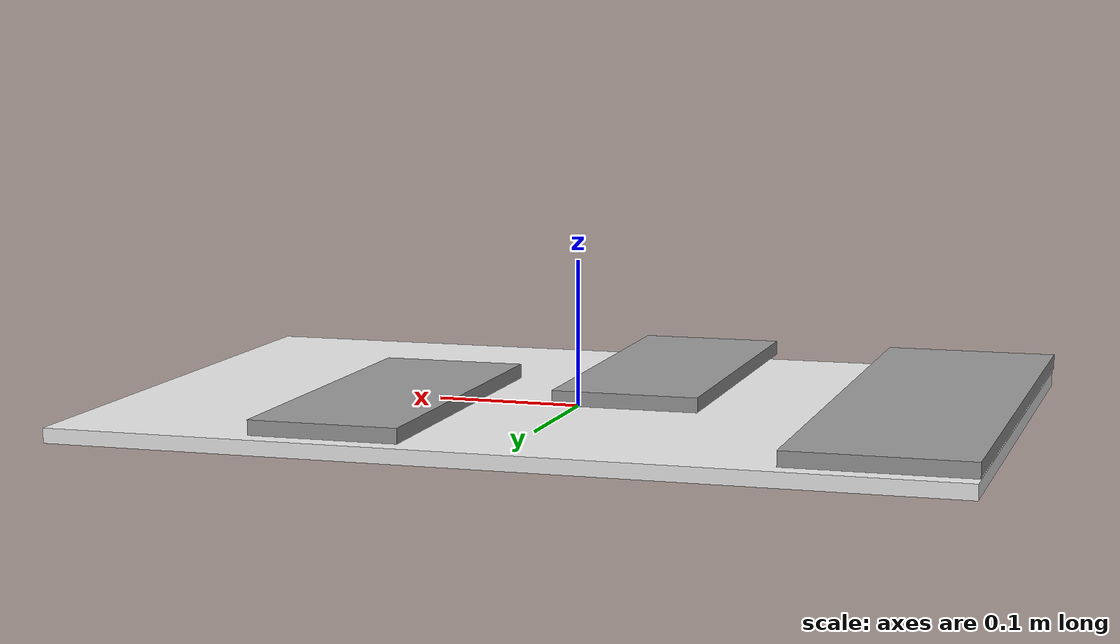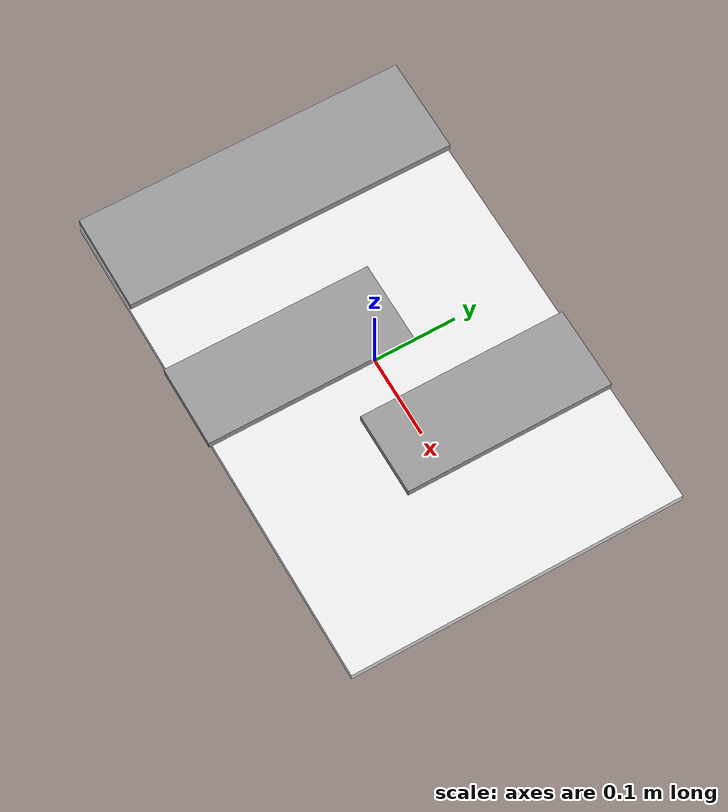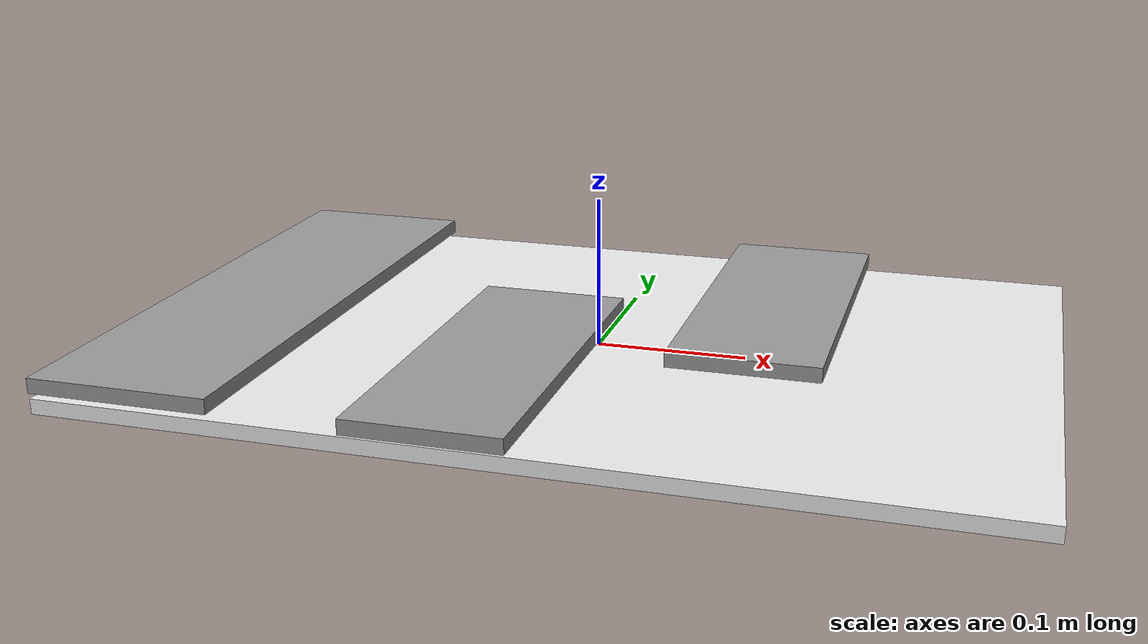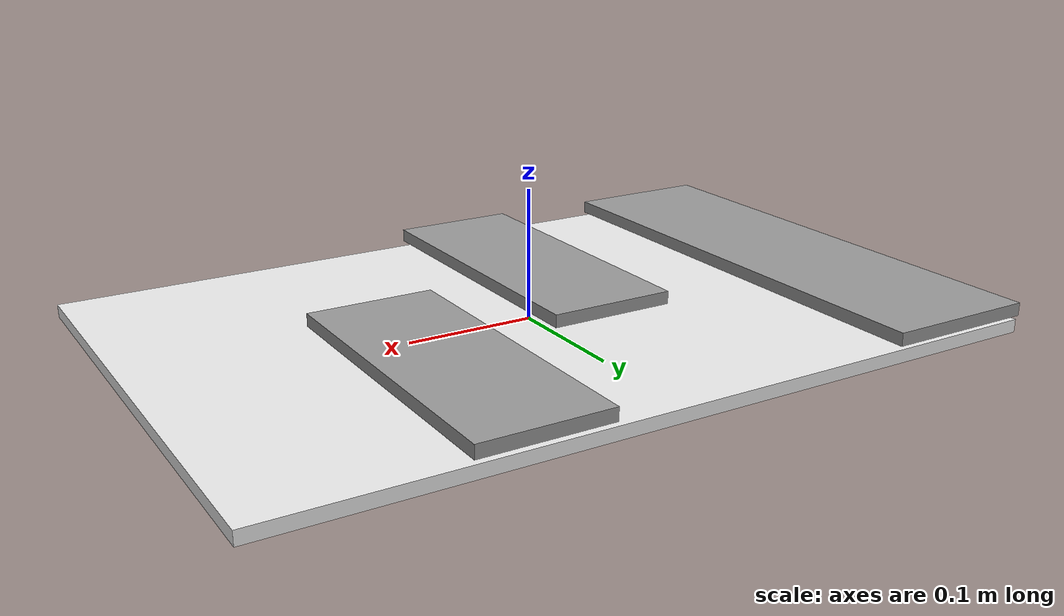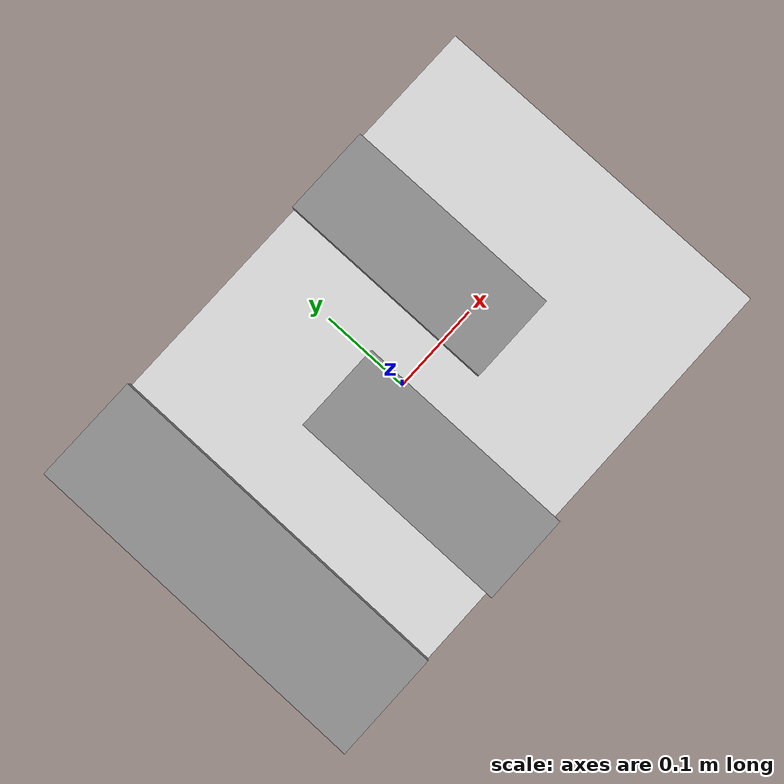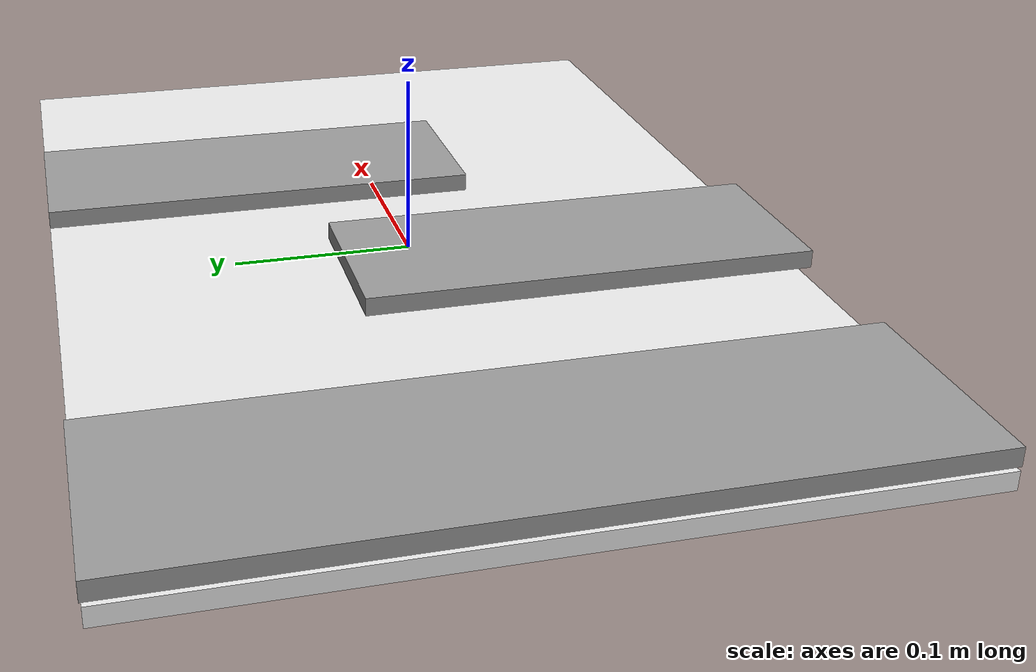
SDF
<?xml version='1.0'?>
<sdf version='1.6'>
  <model name='lfd_canvas'>
    <link name='link'>
      <inertial>
        <mass>1</mass>
        <inertia>
          <ixx>0.166667</ixx>
          <ixy>0</ixy>
          <ixz>0</ixz>
          <iyy>0.166667</iyy>
          <iyz>0</iyz>
          <izz>0.166667</izz>
        </inertia>
        <pose frame=''>0 0 0 0 -0 0</pose>
      </inertial>
      <self_collide>0</self_collide>
      <enable_wind>0</enable_wind>
      <kinematic>0</kinematic>
      <pose frame=''>0 0 0 0 -0 0</pose>
      <gravity>1</gravity>
      <visual name='visual'>
        <geometry>
          <box>
            <size>0.6 0.4 0.01</size>
          </box>
        </geometry>
        <material>
          <script>
            <name>Gazebo/White</name>
            <uri>file://media/materials/scripts/gazebo.material</uri>
          </script>
          <shader type='vertex'>
            <normal_map>__default__</normal_map>
          </shader>
          <ambient>1 1 1 1</ambient>
          <diffuse>1 1 1 1</diffuse>
          <specular>0 0 0 1</specular>
          <emissive>0 0 0 1</emissive>
        </material>
        <pose frame=''>0 0 0 0 -0 0</pose>
        <transparency>0</transparency>
        <cast_shadows>1</cast_shadows>
      </visual>
      <collision name='collision'>
        <laser_retro>0</laser_retro>
        <max_contacts>10</max_contacts>
        <pose frame=''>0 0 0 0 -0 0</pose>
        <geometry>
          <box>
            <size>0.6 0.4 0.01</size>
          </box>
        </geometry>
        <surface>
          <friction>
            <ode>
              <mu>1</mu>
              <mu2>1</mu2>
              <fdir1>0 0 0</fdir1>
              <slip1>0</slip1>
              <slip2>0</slip2>
            </ode>
            <torsional>
              <coefficient>1</coefficient>
              <patch_radius>0</patch_radius>
              <surface_radius>0</surface_radius>
              <use_patch_radius>1</use_patch_radius>
              <ode>
                <slip>0</slip>
              </ode>
            </torsional>
          </friction>
          <bounce>
            <restitution_coefficient>0</restitution_coefficient>
            <threshold>1e+06</threshold>
          </bounce>
          <contact>
            <collide_without_contact>0</collide_without_contact>
            <collide_without_contact_bitmask>1</collide_without_contact_bitmask>
            <collide_bitmask>1</collide_bitmask>
            <ode>
              <soft_cfm>0</soft_cfm>
              <soft_erp>0.2</soft_erp>
              <kp>1e+13</kp>
              <kd>1</kd>
              <max_vel>0.01</max_vel>
              <min_depth>0</min_depth>
            </ode>
            <bullet>
              <split_impulse>1</split_impulse>
              <split_impulse_penetration_threshold>-0.01</split_impulse_penetration_threshold>
              <soft_cfm>0</soft_cfm>
              <soft_erp>0.2</soft_erp>
              <kp>1e+13</kp>
              <kd>1</kd>
            </bullet>
          </contact>
        </surface>
      </collision>
    </link>
    <link name='link_0'>
      <inertial>
        <mass>1</mass>
        <inertia>
          <ixx>0.166667</ixx>
          <ixy>0</ixy>
          <ixz>0</ixz>
          <iyy>0.166667</iyy>
          <iyz>0</iyz>
          <izz>0.166667</izz>
        </inertia>
        <pose frame=''>0 0 0 0 -0 0</pose>
      </inertial>
      <pose frame=''>-0.241299 0.000809 0.013047 0 -0 0</pose>
      <gravity>1</gravity>
      <self_collide>0</self_collide>
      <kinematic>0</kinematic>
      <enable_wind>0</enable_wind>
      <visual name='visual'>
        <pose frame=''>0 0 0 0 -0 0</pose>
        <geometry>
          <box>
            <size>0.12 0.4 0.01</size>
          </box>
        </geometry>
        <material>
          <lighting>1</lighting>
          <script>
            <uri>file://media/materials/scripts/gazebo.material</uri>
            <name>Gazebo/Grey</name>
          </script>
          <shader type='vertex'>
            <normal_map>__default__</normal_map>
          </shader>
          <ambient>0.3 0.3 0.3 1</ambient>
          <diffuse>0.7 0.7 0.7 1</diffuse>
          <specular>0.01 0.01 0.01 1</specular>
          <emissive>0 0 0 1</emissive>
        </material>
        <transparency>0</transparency>
        <cast_shadows>1</cast_shadows>
      </visual>
      <collision name='collision'>
        <laser_retro>0</laser_retro>
        <max_contacts>10</max_contacts>
        <pose frame=''>0 0 0 0 -0 0</pose>
        <geometry>
          <box>
            <size>0.12 0.4 0.01</size>
          </box>
        </geometry>
        <surface>
          <friction>
            <ode>
              <mu>1</mu>
              <mu2>1</mu2>
              <fdir1>0 0 0</fdir1>
              <slip1>0</slip1>
              <slip2>0</slip2>
            </ode>
            <torsional>
              <coefficient>1</coefficient>
              <patch_radius>0</patch_radius>
              <surface_radius>0</surface_radius>
              <use_patch_radius>1</use_patch_radius>
              <ode>
                <slip>0</slip>
              </ode>
            </torsional>
          </friction>
          <bounce>
            <restitution_coefficient>0</restitution_coefficient>
            <threshold>1e+06</threshold>
          </bounce>
          <contact>
            <collide_without_contact>0</collide_without_contact>
            <collide_without_contact_bitmask>1</collide_without_contact_bitmask>
            <collide_bitmask>1</collide_bitmask>
            <ode>
              <soft_cfm>0</soft_cfm>
              <soft_erp>0.2</soft_erp>
              <kp>1e+13</kp>
              <kd>1</kd>
              <max_vel>0.01</max_vel>
              <min_depth>0</min_depth>
            </ode>
            <bullet>
              <split_impulse>1</split_impulse>
              <split_impulse_penetration_threshold>-0.01</split_impulse_penetration_threshold>
              <soft_cfm>0</soft_cfm>
              <soft_erp>0.2</soft_erp>
              <kp>1e+13</kp>
              <kd>1</kd>
            </bullet>
          </contact>
        </surface>
      </collision>
    </link>
    <link name='link_0_clone'>
      <inertial>
        <mass>1</mass>
        <inertia>
          <ixx>0.166667</ixx>
          <ixy>0</ixy>
          <ixz>0</ixz>
          <iyy>0.166667</iyy>
          <iyz>0</iyz>
          <izz>0.166667</izz>
        </inertia>
        <pose frame=''>0 0 0 0 -0 0</pose>
      </inertial>
      <pose frame=''>-0.045094 -0.079298 0.013047 0 -0 0</pose>
      <gravity>1</gravity>
      <self_collide>0</self_collide>
      <kinematic>0</kinematic>
      <enable_wind>0</enable_wind>
      <visual name='visual'>
        <pose frame=''>0 0 0 0 -0 0</pose>
        <geometry>
          <box>
            <size>0.1 0.25 0.01</size>
          </box>
        </geometry>
        <material>
          <lighting>1</lighting>
          <script>
            <uri>file://media/materials/scripts/gazebo.material</uri>
            <name>Gazebo/Grey</name>
          </script>
          <shader type='vertex'>
            <normal_map>__default__</normal_map>
          </shader>
          <ambient>0.3 0.3 0.3 1</ambient>
          <diffuse>0.7 0.7 0.7 1</diffuse>
          <specular>0.01 0.01 0.01 1</specular>
          <emissive>0 0 0 1</emissive>
        </material>
        <transparency>0</transparency>
        <cast_shadows>1</cast_shadows>
      </visual>
      <collision name='collision'>
        <laser_retro>0</laser_retro>
        <max_contacts>10</max_contacts>
        <pose frame=''>0 0 0 0 -0 0</pose>
        <geometry>
          <box>
            <size>0.1 0.25 0.01</size>
          </box>
        </geometry>
        <surface>
          <friction>
            <ode>
              <mu>1</mu>
              <mu2>1</mu2>
              <fdir1>0 0 0</fdir1>
              <slip1>0</slip1>
              <slip2>0</slip2>
            </ode>
            <torsional>
              <coefficient>1</coefficient>
              <patch_radius>0</patch_radius>
              <surface_radius>0</surface_radius>
              <use_patch_radius>1</use_patch_radius>
              <ode>
                <slip>0</slip>
              </ode>
            </torsional>
          </friction>
          <bounce>
            <restitution_coefficient>0</restitution_coefficient>
            <threshold>1e+06</threshold>
          </bounce>
          <contact>
            <collide_without_contact>0</collide_without_contact>
            <collide_without_contact_bitmask>1</collide_without_contact_bitmask>
            <collide_bitmask>1</collide_bitmask>
            <ode>
              <soft_cfm>0</soft_cfm>
              <soft_erp>0.2</soft_erp>
              <kp>1e+13</kp>
              <kd>1</kd>
              <max_vel>0.01</max_vel>
              <min_depth>0</min_depth>
            </ode>
            <bullet>
              <split_impulse>1</split_impulse>
              <split_impulse_penetration_threshold>-0.01</split_impulse_penetration_threshold>
              <soft_cfm>0</soft_cfm>
              <soft_erp>0.2</soft_erp>
              <kp>1e+13</kp>
              <kd>1</kd>
            </bullet>
          </contact>
        </surface>
      </collision>
    </link>
    <link name='link_0_clone_clone'>
      <inertial>
        <mass>1</mass>
        <inertia>
          <ixx>0.166667</ixx>
          <ixy>0</ixy>
          <ixz>0</ixz>
          <iyy>0.166667</iyy>
          <iyz>0</iyz>
          <izz>0.166667</izz>
        </inertia>
        <pose frame=''>0 0 0 0 -0 0</pose>
      </inertial>
      <pose frame=''>0.10718 0.074965 0.013047 0 -0 0</pose>
      <gravity>1</gravity>
      <self_collide>0</self_collide>
      <kinematic>0</kinematic>
      <enable_wind>0</enable_wind>
      <visual name='visual'>
        <pose frame=''>0 0 0 0 -0 0</pose>
        <geometry>
          <box>
            <size>0.1 0.25 0.01</size>
          </box>
        </geometry>
        <material>
          <lighting>1</lighting>
          <script>
            <uri>file://media/materials/scripts/gazebo.material</uri>
            <name>Gazebo/Grey</name>
          </script>
          <shader type='vertex'>
            <normal_map>__default__</normal_map>
          </shader>
          <ambient>0.3 0.3 0.3 1</ambient>
          <diffuse>0.7 0.7 0.7 1</diffuse>
          <specular>0.01 0.01 0.01 1</specular>
          <emissive>0 0 0 1</emissive>
        </material>
        <transparency>0</transparency>
        <cast_shadows>1</cast_shadows>
      </visual>
      <collision name='collision'>
        <laser_retro>0</laser_retro>
        <max_contacts>10</max_contacts>
        <pose frame=''>0 0 0 0 -0 0</pose>
        <geometry>
          <box>
            <size>0.1 0.25 0.01</size>
          </box>
        </geometry>
        <surface>
          <friction>
            <ode>
              <mu>1</mu>
              <mu2>1</mu2>
              <fdir1>0 0 0</fdir1>
              <slip1>0</slip1>
              <slip2>0</slip2>
            </ode>
            <torsional>
              <coefficient>1</coefficient>
              <patch_radius>0</patch_radius>
              <surface_radius>0</surface_radius>
              <use_patch_radius>1</use_patch_radius>
              <ode>
                <slip>0</slip>
              </ode>
            </torsional>
          </friction>
          <bounce>
            <restitution_coefficient>0</restitution_coefficient>
            <threshold>1e+06</threshold>
          </bounce>
          <contact>
            <collide_without_contact>0</collide_without_contact>
            <collide_without_contact_bitmask>1</collide_without_contact_bitmask>
            <collide_bitmask>1</collide_bitmask>
            <ode>
              <soft_cfm>0</soft_cfm>
              <soft_erp>0.2</soft_erp>
              <kp>1e+13</kp>
              <kd>1</kd>
              <max_vel>0.01</max_vel>
              <min_depth>0</min_depth>
            </ode>
            <bullet>
              <split_impulse>1</split_impulse>
              <split_impulse_penetration_threshold>-0.01</split_impulse_penetration_threshold>
              <soft_cfm>0</soft_cfm>
              <soft_erp>0.2</soft_erp>
              <kp>1e+13</kp>
              <kd>1</kd>
            </bullet>
          </contact>
        </surface>
      </collision>
    </link>
    <link name='link_1'>
      <inertial>
        <mass>1</mass>
        <inertia>
          <ixx>0.145833</ixx>
          <ixy>0</ixy>
          <ixz>0</ixz>
          <iyy>0.145833</iyy>
          <iyz>0</iyz>
          <izz>0.125</izz>
        </inertia>
        <pose frame=''>0 0 0 0 -0 0</pose>
      </inertial>
      <pose frame=''>0.204195 0.073589 -0.004822 0 -0 0</pose>
      <gravity>1</gravity>
      <self_collide>0</self_collide>
      <kinematic>0</kinematic>
      <enable_wind>0</enable_wind>
      <visual name='visual'>
        <pose frame=''>0 0 0 0 -0 0</pose>
        <geometry>
          <cylinder>
            <radius>0.005</radius>
            <length>0.01</length>
          </cylinder>
        </geometry>
        <material>
          <lighting>1</lighting>
          <script>
            <uri>file://media/materials/scripts/gazebo.material</uri>
            <name>Gazebo/Green</name>
          </script>
          <shader type='vertex'>
            <normal_map>__default__</normal_map>
          </shader>
          <ambient>0.3 0.3 0.3 1</ambient>
          <diffuse>0.7 0.7 0.7 1</diffuse>
          <specular>0.01 0.01 0.01 1</specular>
          <emissive>0 0 0 1</emissive>
        </material>
        <transparency>0</transparency>
        <cast_shadows>1</cast_shadows>
      </visual>
      <collision name='collision'>
        <laser_retro>0</laser_retro>
        <max_contacts>10</max_contacts>
        <pose frame=''>0 0 0 0 -0 0</pose>
        <geometry>
          <cylinder>
            <radius>0.005</radius>
            <length>0.01</length>
          </cylinder>
        </geometry>
        <surface>
          <friction>
            <ode>
              <mu>1</mu>
              <mu2>1</mu2>
              <fdir1>0 0 0</fdir1>
              <slip1>0</slip1>
              <slip2>0</slip2>
            </ode>
            <torsional>
              <coefficient>1</coefficient>
              <patch_radius>0</patch_radius>
              <surface_radius>0</surface_radius>
              <use_patch_radius>1</use_patch_radius>
              <ode>
                <slip>0</slip>
              </ode>
            </torsional>
          </friction>
          <bounce>
            <restitution_coefficient>0</restitution_coefficient>
            <threshold>1e+06</threshold>
          </bounce>
          <contact>
            <collide_without_contact>0</collide_without_contact>
            <collide_without_contact_bitmask>1</collide_without_contact_bitmask>
            <collide_bitmask>1</collide_bitmask>
            <ode>
              <soft_cfm>0</soft_cfm>
              <soft_erp>0.2</soft_erp>
              <kp>1e+13</kp>
              <kd>1</kd>
              <max_vel>0.01</max_vel>
              <min_depth>0</min_depth>
            </ode>
            <bullet>
              <split_impulse>1</split_impulse>
              <split_impulse_penetration_threshold>-0.01</split_impulse_penetration_threshold>
              <soft_cfm>0</soft_cfm>
              <soft_erp>0.2</soft_erp>
              <kp>1e+13</kp>
              <kd>1</kd>
            </bullet>
          </contact>
        </surface>
      </collision>
    </link>
    <static>0</static>
    <allow_auto_disable>1</allow_auto_disable>
  </model>
</sdf>
